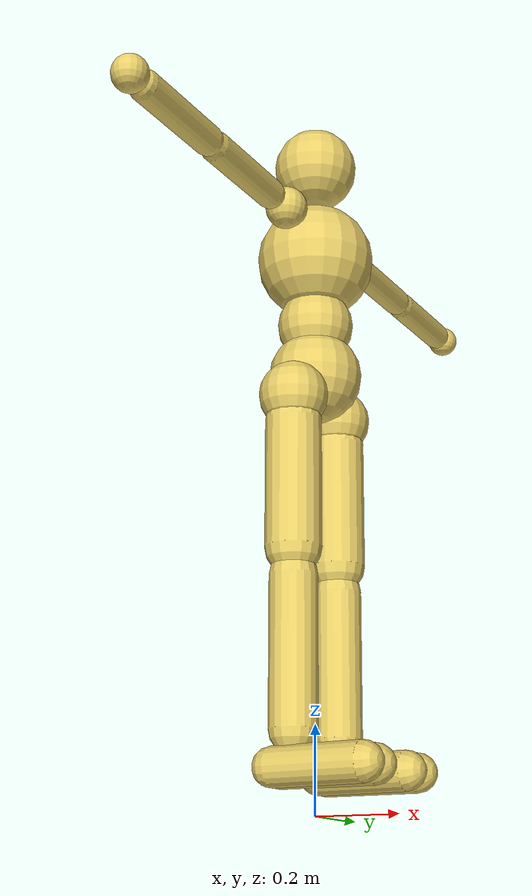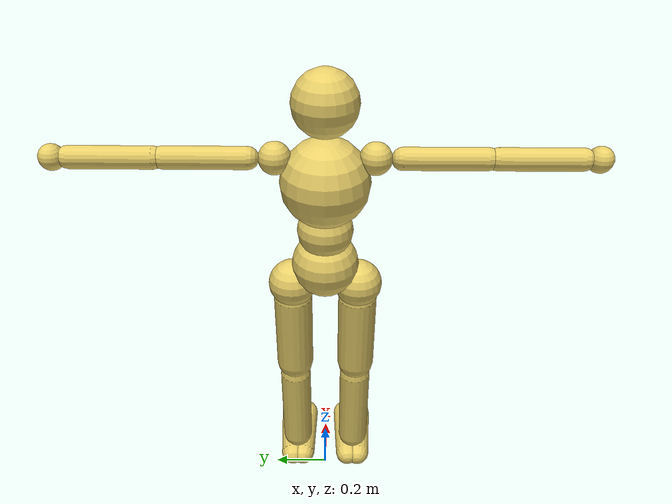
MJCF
<mujoco model="humanoid">
    <compiler angle="degree" inertiafromgeom="true"/>
    <default>
        <joint armature="0.01" damping=".1" limited="true"/>
        <geom conaffinity="3" condim="3" friction="1.2 0.1 0.1" contype="3" margin="0.001" material="geom" rgba=".9 .8 .4 1"/>
        <motor ctrllimited="true" ctrlrange="-.4 .4"/>
    </default>
    <option integrator="RK4" iterations="50" solver="PGS" timestep="0.003">
    </option>
    <size nkey="5" nuser_geom="1"/>
    <visual>
        <map fogend="5" fogstart="3"/>
    </visual>
    <asset>
        <texture builtin="gradient" height="100" rgb1=".4 .5 .6" rgb2="0 0 0" type="skybox" width="100"/>
        <texture builtin="flat" height="1278" mark="cross" markrgb="1 1 1" name="texgeom" random="0.01" rgb1="0.8 0.6 0.4" rgb2="0.8 0.6 0.4" type="cube" width="127"/>
        <texture builtin="checker" height="100" name="texplane" rgb1="0 0 0" rgb2="0.8 0.8 0.8" type="2d" width="100"/>
        <material name="MatPlane" reflectance="0.5" shininess="1" specular="1" texrepeat="60 60" texture="texplane"/>
        <material name="geom" texture="texgeom" texuniform="true"/>
    </asset>
    <worldbody>
        <body name="walker3d" pos="0 0 1.32">
            <body name="head" pos="0 0 .25">
                <geom name="head" pos="0 0 0" size=".1" type="sphere" user="258"/>
            </body>
            <body name="torso" pos="0 0 0">
                <geom name="torso1" pos="0 0 0" size=".14" conaffinity="1" contype="1" type="sphere"/>
            </body>
            <geom name="right_shoulder" pos="0 -0.15 0.08" size=".05" type="sphere"/>
            <geom name="left_shoulder" pos="0 0.15 0.08" size=".05" type="sphere"/>
            <body name="waist" pos="0 0 -0.240">
                <joint axis="0 0 1" name="abdomen_z" pos="0 0 0.065" range="-35 35" stiffness="0" type="hinge"/>
                <joint axis="0 1 0" name="abdomen_y" pos="0 0 0.065" range="-80 15" stiffness="0" type="hinge"/>
                <geom name="waist" pos="0 0 0.07" size="0.09" conaffinity="2" contype="2" type="sphere" />
                <body name="pelvis" pos="0 0 -0.16" quat="1.000 0 -0.002 0">
                    <joint axis="1 0 0" name="abdomen_x" pos="0 0 0.1" range="-25 25" stiffness="0" type="hinge"/>
                    <geom name="butt" pos="0 0 0.1" size="0.11" conaffinity="1" contype="1" type="sphere"/>
                    <body name="right_thigh" pos="0 -0.11 -0.04">
                        <joint axis="1 0 0" name="right_hip_x" pos="0 0 0.06" range="-25 5" stiffness="0" type="hinge"/>
                        <joint axis="0 0 1" name="right_hip_z" pos="0 0 0.06" range="-40 35" stiffness="0" type="hinge"/>
                        <joint axis="0 1 0" name="right_hip_y" pos="0 0 0.06" range="-100 20" stiffness="0" type="hinge"/>
                        <geom name="right_hip" pos="0 0 0.06" size=".08" type="sphere"/>
                        <geom fromto="0 0 0 0 0 -.30" name="right_thigh1" size="0.065" type="capsule"/>
                        <body name="right_shin" pos="0 0 -0.363">
                            <joint axis="0 -1 0" name="right_knee" pos="0 0 .02" range="-150 0" stiffness="0" type="hinge"/>
                            <geom fromto="0 0 0 0 0 -.34" name="right_shin1" size="0.055" type="capsule"/>
                            <body name="right_foot" pos="0 0 -0.49">
                                <joint axis="0 1 0" name="right_ankle" pos="0 0 0.07" range="-20 40" stiffness="0" type="hinge"/>
                                <geom fromto="-0.04 0.02 0.07 0.18 0.03 0.07" name="right_foot_1" type="capsule" size="0.045"/>
                                <geom fromto="-0.04 -0.02 0.07 0.18 -0.03 0.07" name="right_foot_2" type="capsule" size="0.045"/>
                            </body>
                        </body>
                    </body>
                    <body name="left_thigh" pos="0 0.11 -0.04">
                        <joint axis="-1 0 0" name="left_hip_x" pos="0 0 0.06" range="-25 5" stiffness="0" type="hinge"/>
                        <joint axis="0 0 -1" name="left_hip_z" pos="0 0 0.06" range="-40 35" stiffness="0" type="hinge"/>
                        <joint axis="0 1 0" name="left_hip_y" pos="0 0 0.06" range="-100 20" stiffness="0" type="hinge"/>
                        <geom name="left_hip" pos="0 0 0.06" size=".08" type="sphere"/>
                        <geom fromto="0 0 0 0 0 -.30" name="left_thigh1" size="0.065" type="capsule"/>
                        <body name="left_shin" pos="0 0 -0.363">
                            <joint axis="0 -1 0" name="left_knee" pos="0 0 .02" range="-150 0" stiffness="0" type="hinge"/>
                            <geom fromto="0 0 0 0 0 -.34" name="left_shin1" size="0.055" type="capsule"/>
                            <body name="left_foot" pos="0 0 -0.49">
                                <joint axis="0 1 0" name="left_ankle" pos="0 0 0.07" range="-20 40" stiffness="0" type="hinge"/>
                                <geom fromto="-0.04 0.02 0.07 0.18 0.03 0.07" name="left_foot_1" type="capsule" size="0.045"/>
                                <geom fromto="-0.04 -0.02 0.07 0.18 -0.03 0.07" name="left_foot_2" type="capsule" size="0.045"/>
                            </body>
                        </body>
                    </body>
                </body>
            </body>
            <body name="right_upper_arm" pos="0 -0.23 0.08">
                <joint axis="1 0 0" name="right_shoulder_x" pos="0 0 0" range="-60 100" stiffness="0" type="hinge"/>
                <joint axis="0 0 1" name="right_shoulder_z" pos="0 0 0" range="-35 120" stiffness="0" type="hinge"/>
                <joint axis="0 1 0" name="right_shoulder_y" pos="0 0 0" range="-60 60" stiffness="0" type="hinge"/>
                <geom fromto="0 0 0 0 -.25 0" name="right_uarm1" size="0.035" type="capsule"/>
                <body name="right_lower_arm" pos="0 -.28 0">
                    <joint axis="0 0 1" name="right_elbow" pos="0 0 0" range="0 120" stiffness="0" type="hinge"/>
                    <geom fromto="0 0 0 0 -.25 0" name="right_larm" size="0.035" type="capsule"/>
                    <body name="right_hand" pos="0 -.30 0">
                        <geom name="right_hand" pos="0 0 0" size=".04" type="sphere"/>
                    </body>
                </body>
            </body>
            <body name="left_upper_arm" pos="0 0.23 0.08">
                <joint axis="-1 0 0 " name="left_shoulder_x" pos="0 0 0" range="-60 100" stiffness="0" type="hinge"/>
                <joint axis="0 0 -1" name="left_shoulder_z" pos="0 0 0" range="-35 120" stiffness="0" type="hinge"/>
                <joint axis="0 1 0" name="left_shoulder_y" pos="0 0 0" range="-60 60" stiffness="0" type="hinge"/>
                <geom fromto="0 0 0 0 .25 0" name="left_uarm1" size="0.035" type="capsule"/>
                <body name="left_lower_arm" pos="0 .28 0">
                    <joint axis="0 0 -1" name="left_elbow" pos="0 0 0" range="0 120" stiffness="0" type="hinge"/>
                    <geom fromto="0 0 0 0 .25 0" name="left_larm" size="0.035" type="capsule"/>
                    <body name="left_hand" pos="0 .30 0">
                        <geom name="left_hand" pos="0 0 0" size=".04" type="sphere"/>
                    </body>
                </body>
            </body>
       </body>
    </worldbody>
    <tendon>
        <fixed name="left_hipknee">
            <joint coef="-1" joint="left_hip_y"/>
            <joint coef="1" joint="left_knee"/>
        </fixed>
        <fixed name="right_hipknee">
            <joint coef="-1" joint="right_hip_y"/>
            <joint coef="1" joint="right_knee"/>
        </fixed>
    </tendon>
    <actuator><!-- this section is not supported, same constants in code -->
        <motor gear="100" joint="abdomen_z" name="abdomen_z"/>
        <motor gear="100" joint="abdomen_y" name="abdomen_y"/>
        <motor gear="100" joint="abdomen_x" name="abdomen_x"/>
        <motor gear="100" joint="right_hip_x" name="right_hip_x"/>
        <motor gear="100" joint="right_hip_z" name="right_hip_z"/>
        <motor gear="300" joint="right_hip_y" name="right_hip_y"/>
        <motor gear="200" joint="right_knee" name="right_knee"/>
        <motor gear="100" joint="right_ankle" name="right_ankle"/>
        <motor gear="100" joint="left_hip_x" name="left_hip_x"/>
        <motor gear="100" joint="left_hip_z" name="left_hip_z"/>
        <motor gear="300" joint="left_hip_y" name="left_hip_y"/>
        <motor gear="200" joint="left_knee" name="left_knee"/>
        <motor gear="100" joint="left_ankle" name="left_ankle"/>
        <motor gear="25" joint="right_shoulder_x" name="right_shoulder_x"/>
        <motor gear="25" joint="right_shoulder_z" name="right_shoulder_z"/>
        <motor gear="25" joint="right_shoulder_y" name="right_shoulder_y"/>
        <motor gear="25" joint="right_elbow" name="right_elbow"/>
        <motor gear="25" joint="left_shoulder_x" name="left_shoulder_x"/>
        <motor gear="25" joint="left_shoulder_z" name="left_shoulder_z"/>
        <motor gear="25" joint="left_shoulder_y" name="left_shoulder_y"/>
        <motor gear="25" joint="left_elbow" name="left_elbow"/>
   </actuator>
</mujoco>
